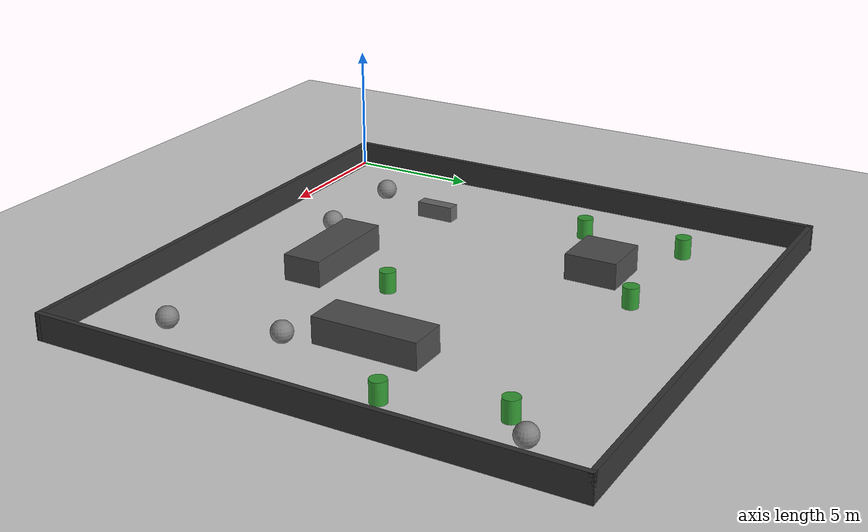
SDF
<?xml version="1.0" ?>
<sdf version="1.6">
  <world name="my_field_map_world">

    <!-- Ground Plane -->
    <include>
      <uri>model://ground_plane</uri>
    </include>

    <!-- Sun -->
    <include>
      <uri>model://sun</uri>
    </include>

    <!-- Border Walls (Black boundary in your map) -->
    <model name="wall_north">
      <static>true</static>
      <pose>10 19.9 0.5 0 0 0</pose>
      <link name="link">
        <visual name="visual">
          <geometry><box><size>20 0.2 1</size></box></geometry>
          <material><ambient>0.2 0.2 0.2 1</ambient></material>
        </visual>
        <collision name="collision">
          <geometry><box><size>20 0.2 1</size></box></geometry>
        </collision>
      </link>
    </model>

    <model name="wall_south">
      <static>true</static>
      <pose>10 0.1 0.5 0 0 0</pose>
      <link name="link">
        <visual name="visual">
          <geometry><box><size>20 0.2 1</size></box></geometry>
          <material><ambient>0.2 0.2 0.2 1</ambient></material>
        </visual>
        <collision name="collision">
          <geometry><box><size>20 0.2 1</size></box></geometry>
        </collision>
      </link>
    </model>

    <model name="wall_east">
      <static>true</static>
      <pose>19.9 10 0.5 0 0 0</pose>
      <link name="link">
        <visual name="visual">
          <geometry><box><size>0.2 20 1</size></box></geometry>
          <material><ambient>0.2 0.2 0.2 1</ambient></material>
        </visual>
        <collision name="collision">
          <geometry><box><size>0.2 20 1</size></box></geometry>
        </collision>
      </link>
    </model>

    <model name="wall_west">
      <static>true</static>
      <pose>0.1 10 0.5 0 0 0</pose>
      <link name="link">
        <visual name="visual">
          <geometry><box><size>0.2 20 1</size></box></geometry>
          <material><ambient>0.2 0.2 0.2 1</ambient></material>
        </visual>
        <collision name="collision">
          <geometry><box><size>0.2 20 1</size></box></geometry>
        </collision>
      </link>
    </model>

    <!-- Large Rectangular Obstacles (Black rectangles in your map) -->

    <!-- Upper left square obstacle -->
    <model name="obstacle_square_1">
      <static>true</static>
      <pose>6 14 0.5 0 0 0</pose>
      <link name="link">
        <visual name="visual">
          <geometry><box><size>2 2 1</size></box></geometry>
          <material><ambient>0.3 0.3 0.3 1</ambient></material>
        </visual>
        <collision name="collision">
          <geometry><box><size>2 2 1</size></box></geometry>
        </collision>
      </link>
    </model>

    <!-- Tall rectangular obstacle (center-right) -->
    <model name="obstacle_tall">
      <static>true</static>
      <pose>15 10 0.5 0 0 0</pose>
      <link name="link">
        <visual name="visual">
          <geometry><box><size>1.5 4 1</size></box></geometry>
          <material><ambient>0.3 0.3 0.3 1</ambient></material>
        </visual>
        <collision name="collision">
          <geometry><box><size>1.5 4 1</size></box></geometry>
        </collision>
      </link>
    </model>

    <!-- Wide rectangular obstacle (lower center) -->
    <model name="obstacle_wide">
      <static>true</static>
      <pose>10 5 0.5 0 0 0</pose>
      <link name="link">
        <visual name="visual">
          <geometry><box><size>4 1.5 1</size></box></geometry>
          <material><ambient>0.3 0.3 0.3 1</ambient></material>
        </visual>
        <collision name="collision">
          <geometry><box><size>4 1.5 1</size></box></geometry>
        </collision>
      </link>
    </model>

    <!-- Small elongated obstacle (left side) -->
    <model name="obstacle_small">
      <static>true</static>
      <pose>4 6 0.3 0 0 1.57</pose>
      <link name="link">
        <visual name="visual">
          <geometry><box><size>1.5 0.5 0.6</size></box></geometry>
          <material><ambient>0.4 0.4 0.4 1</ambient></material>
        </visual>
        <collision name="collision">
          <geometry><box><size>1.5 0.5 0.6</size></box></geometry>
        </collision>
      </link>
    </model>

    <!-- Small Circular Obstacles (Black dots in your map) -->
    <!-- These represent trees, rocks, or small obstacles -->

    <model name="tree_1">
      <static>true</static>
      <pose>3 16 0.4 0 0 0</pose>
      <link name="link">
        <visual name="visual">
          <geometry><cylinder><radius>0.3</radius><length>0.8</length></cylinder></geometry>
          <material><ambient>0.2 0.6 0.2 1</ambient></material>
        </visual>
        <collision name="collision">
          <geometry><cylinder><radius>0.3</radius><length>0.8</length></cylinder></geometry>
        </collision>
      </link>
    </model>

    <model name="tree_2">
      <static>true</static>
      <pose>8 16 0.4 0 0 0</pose>
      <link name="link">
        <visual name="visual">
          <geometry><cylinder><radius>0.3</radius><length>0.8</length></cylinder></geometry>
          <material><ambient>0.2 0.6 0.2 1</ambient></material>
        </visual>
        <collision name="collision">
          <geometry><cylinder><radius>0.3</radius><length>0.8</length></cylinder></geometry>
        </collision>
      </link>
    </model>

    <model name="tree_3">
      <static>true</static>
      <pose>17 16 0.4 0 0 0</pose>
      <link name="link">
        <visual name="visual">
          <geometry><cylinder><radius>0.3</radius><length>0.8</length></cylinder></geometry>
          <material><ambient>0.2 0.6 0.2 1</ambient></material>
        </visual>
        <collision name="collision">
          <geometry><cylinder><radius>0.3</radius><length>0.8</length></cylinder></geometry>
        </collision>
      </link>
    </model>

    <model name="tree_4">
      <static>true</static>
      <pose>3 12 0.4 0 0 0</pose>
      <link name="link">
        <visual name="visual">
          <geometry><cylinder><radius>0.3</radius><length>0.8</length></cylinder></geometry>
          <material><ambient>0.2 0.6 0.2 1</ambient></material>
        </visual>
        <collision name="collision">
          <geometry><cylinder><radius>0.3</radius><length>0.8</length></cylinder></geometry>
        </collision>
      </link>
    </model>

    <model name="tree_5">
      <static>true</static>
      <pose>18 12 0.4 0 0 0</pose>
      <link name="link">
        <visual name="visual">
          <geometry><cylinder><radius>0.3</radius><length>0.8</length></cylinder></geometry>
          <material><ambient>0.2 0.6 0.2 1</ambient></material>
        </visual>
        <collision name="collision">
          <geometry><cylinder><radius>0.3</radius><length>0.8</length></cylinder></geometry>
        </collision>
      </link>
    </model>

    <model name="tree_6">
      <static>true</static>
      <pose>11 8 0.4 0 0 0</pose>
      <link name="link">
        <visual name="visual">
          <geometry><cylinder><radius>0.3</radius><length>0.8</length></cylinder></geometry>
          <material><ambient>0.2 0.6 0.2 1</ambient></material>
        </visual>
        <collision name="collision">
          <geometry><cylinder><radius>0.3</radius><length>0.8</length></cylinder></geometry>
        </collision>
      </link>
    </model>

    <model name="rock_1">
      <static>true</static>
      <pose>3 3 0.3 0 0 0</pose>
      <link name="link">
        <visual name="visual">
          <geometry><sphere><radius>0.4</radius></sphere></geometry>
          <material><ambient>0.5 0.5 0.5 1</ambient></material>
        </visual>
        <collision name="collision">
          <geometry><sphere><radius>0.4</radius></sphere></geometry>
        </collision>
      </link>
    </model>

    <model name="rock_2">
      <static>true</static>
      <pose>17 3 0.3 0 0 0</pose>
      <link name="link">
        <visual name="visual">
          <geometry><sphere><radius>0.4</radius></sphere></geometry>
          <material><ambient>0.5 0.5 0.5 1</ambient></material>
        </visual>
        <collision name="collision">
          <geometry><sphere><radius>0.4</radius></sphere></geometry>
        </collision>
      </link>
    </model>

    <model name="rock_3">
      <static>true</static>
      <pose>16 7 0.3 0 0 0</pose>
      <link name="link">
        <visual name="visual">
          <geometry><sphere><radius>0.4</radius></sphere></geometry>
          <material><ambient>0.5 0.5 0.5 1</ambient></material>
        </visual>
        <collision name="collision">
          <geometry><sphere><radius>0.4</radius></sphere></geometry>
        </collision>
      </link>
    </model>

    <model name="rock_4">
      <static>true</static>
      <pose>7 3 0.3 0 0 0</pose>
      <link name="link">
        <visual name="visual">
          <geometry><sphere><radius>0.4</radius></sphere></geometry>
          <material><ambient>0.5 0.5 0.5 1</ambient></material>
        </visual>
        <collision name="collision">
          <geometry><sphere><radius>0.4</radius></sphere></geometry>
        </collision>
      </link>
    </model>

    <model name="rock_5">
      <static>true</static>
      <pose>18 17 0.3 0 0 0</pose>
      <link name="link">
        <visual name="visual">
          <geometry><sphere><radius>0.4</radius></sphere></geometry>
          <material><ambient>0.5 0.5 0.5 1</ambient></material>
        </visual>
        <collision name="collision">
          <geometry><sphere><radius>0.4</radius></sphere></geometry>
        </collision>
      </link>
    </model>

  </world>
</sdf>
